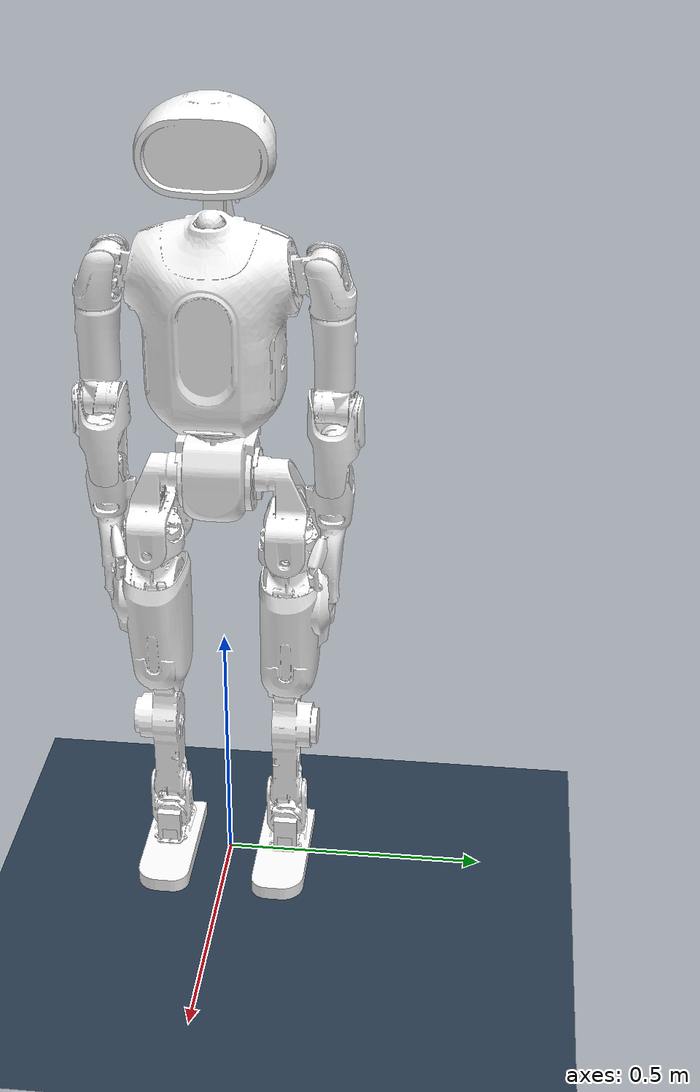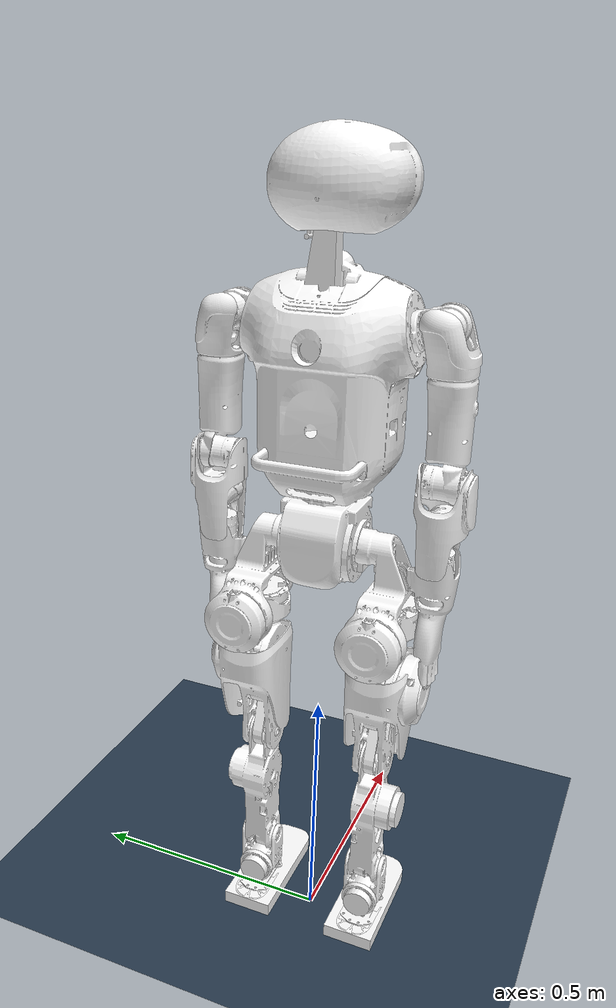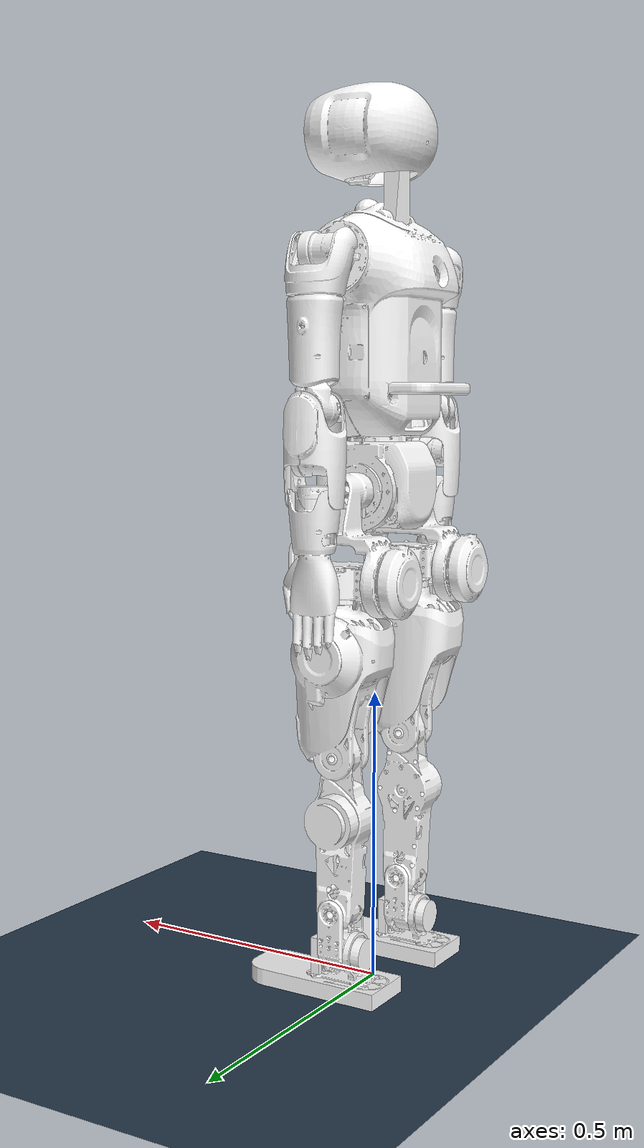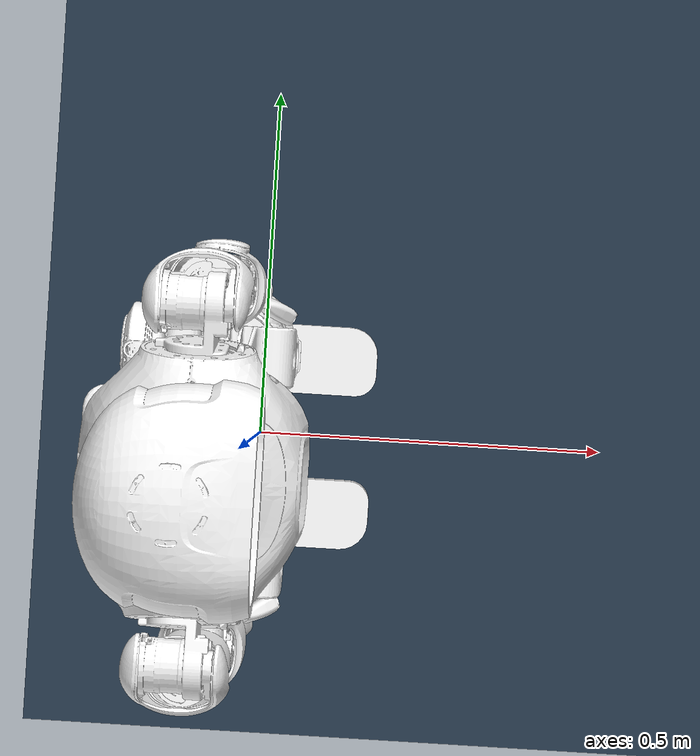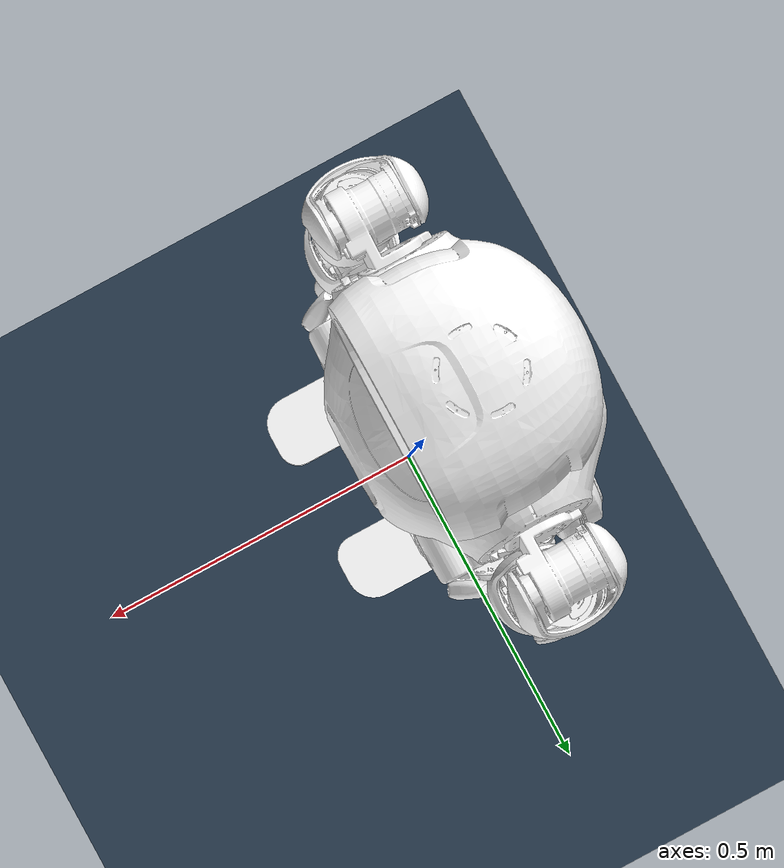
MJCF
<mujoco model="orca">
  <compiler angle="radian" meshdir="meshes/" eulerseq="zyx" discardvisual="false"/>
  <option timestep="0.001"  tolerance="1e-10" solver="Newton" jacobian="dense" cone="pyramidal" gravity="0 0 -9.81">  <!--integrator="RK4"  iteration="50"-->
        <flag contact="enable" energy="enable"/>
  </option>
    <size njmax="500" nconmax="1000" />
    <visual>
        <quality shadowsize='4096'/>
        <map znear='0.05'/>
    </visual>
    <default>
        <joint limited='true'/>
        <motor ctrllimited='true'/>
        <geom  condim='4' contype="1" conaffinity="15" solref='0.001 2' friction='1.0 0.2 0.2'/>
        <equality solref='0.001 2'/>
        <default class='visualgeom'>
            <geom material='visualgeom' condim='1' contype='0' conaffinity='0'/>
        </default>
        <default class='visualgeom2'>
            <geom material='visualgeom2' condim='1' contype='0' conaffinity='0'/>
        </default>
        <default class='obstacle'>
            <geom material='obstacle' condim='3' contype='1' conaffinity='15'/>
        </default>
    </default>
    <asset>
        <texture type="skybox" builtin="gradient" rgb1="0.3 0.5 0.7" rgb2="0 0 0" width="512" height="512"/>
        <texture name="texplane" type="2d" builtin="checker" rgb1=".2 .3 .4" rgb2=".1 0.15 0.2"
            width="512" height="512" mark="cross" markrgb=".8 .8 .8"/>
        <texture name="texplane2" type="2d" builtin="checker" rgb1="1 0.3137 0.1843" rgb2="0.0 0.30196 0.38039"
            width="512" height="512" mark="cross" markrgb=".8 .8 .8"/>

        <material name="matplane" reflectance="0." texture="texplane" texrepeat="1 1" texuniform="true"/>
        <material name="matplane2" reflectance="0.1" texture="texplane2" texrepeat="1 1" texuniform="true"/>

        <material name='obstacle'  rgba='0.9 0.6 0.2 1'/>
        <material name='visualgeom'  rgba='0.5 0.9 0.2 1'/>
        <material name='visualgeom2'  rgba='0.5 0.9 0.2 1'/>

        <mesh name="base_link" file="base_link.STL" />
        <mesh name="waist_yaw_link1" file="waist_yaw_link1.STL" />
        <mesh name="larm_link1" file="larm_link1.STL" />
        <mesh name="larm_link2" file="larm_link2.STL" />
        <mesh name="larm_link3" file="larm_link3.STL" />
        <mesh name="larm_link4" file="larm_link4.STL" />
        <mesh name="larm_link5" file="larm_link5.STL" />
        <mesh name="larm_link6" file="larm_link6.STL" />
        <mesh name="rarm_link1" file="rarm_link1.STL" />
        <mesh name="rarm_link2" file="rarm_link2.STL" />
        <mesh name="rarm_link3" file="rarm_link3.STL" />
        <mesh name="rarm_link4" file="rarm_link4.STL" />
        <mesh name="rarm_link5" file="rarm_link5.STL" />
        <mesh name="rarm_link6" file="rarm_link6.STL" />
        <mesh name="head_link1" file="head_link1.STL" />
        <mesh name="head_link2" file="head_link2.STL" />
        <mesh name="head_link3" file="head_link3.STL" />
        <mesh name="lleg_link1" file="lleg_link1.STL" />
        <mesh name="lleg_link2" file="lleg_link2.STL" />
        <mesh name="lleg_link3" file="lleg_link3.STL" />
        <mesh name="lleg_link4" file="lleg_link4.STL" />
        <mesh name="lleg_link5" file="lleg_link5.STL" />
        <mesh name="lleg_link6" file="lleg_link6.STL" />
        <mesh name="lleg_link6_cls" file="lleg_link6_cls.STL" />
        <mesh name="rleg_link1" file="rleg_link1.STL" />
        <mesh name="rleg_link2" file="rleg_link2.STL" />
        <mesh name="rleg_link3" file="rleg_link3.STL" />
        <mesh name="rleg_link4" file="rleg_link4.STL" />
        <mesh name="rleg_link5" file="rleg_link5.STL" />
        <mesh name="rleg_link6" file="rleg_link6.STL" />
        <mesh name="rleg_link6_cls" file="rleg_link6_cls.STL" />

    </asset>
    <worldbody>
        <light directional="true" diffuse=".4 .4 .4" specular="0.1 0.1 0.1" pos="0 0 5.0" dir="0 0 -1" castshadow="false"/>
        <light directional="true" diffuse=".6 .6 .6" specular="0.2 0.2 0.2" pos="0 0 4" dir="0 0 -1"/>
        <geom name="ground" type="plane" size="0 0 1" pos="0.001 0 0" quat="1 0 0 0" material="matplane" condim="1" conaffinity='15'/>
    <body name="base_link" pos="0.0 0.0 0.85">
      <joint type='slide' axis='1 0 0' limited='false' />
      <joint type='slide' axis='0 1 0' limited='false' />
      <joint type='slide' axis='0 0 1' limited="false" />
      <joint type='ball' limited='false' />
      <site name='imu' size='0.01' pos='0.0 0 0.0'/>

        <geom type="mesh" contype="0" conaffinity="0" group="1" rgba="1 1 1 1" mesh="base_link" />
        <geom size="0.05 0.05 0.05" type="box" rgba="1 1 1 1" />
        <body name="waist_yaw_link1" pos="0 0 0.078" quat="0.5 -0.5 -0.5 0.5">
            <inertial pos="-2.46e-05 -0.195013 0.000228684" quat="0.502097 0.498176 -0.497806 0.501904" mass="11.0332" diaginertia="0.179393 0.155358 0.0654156" />
            <joint name="waist_yaw_joint" pos="0 0 0" axis="0 -1 0" limited="true" range="-1.571 1.571" damping="0.2" />
            <geom type="mesh" contype="0" conaffinity="0" group="1" rgba="1 1 1 1" mesh="waist_yaw_link1" />
            <body name="larm_link1" pos="0.134953 -0.295908 0" quat="0.454519 0.541675 0.454519 -0.541675">
                <inertial pos="0.000439855 0.0358502 7.91e-06" quat="0.519328 0.479105 -0.519788 0.480185" mass="0.576081" diaginertia="0.00059525 0.000527291 0.000441012" />
                <joint name="larm_joint1" pos="0 0 0" axis="0 1 0" limited="true" range="-2.88 2.88" damping="0.2" />
                <geom type="mesh" contype="0" conaffinity="0" group="1" rgba="1 1 1 1" mesh="larm_link1" />
                <body name="larm_link2" pos="-0.0015 0.0499987 0" quat="0.454519 -0.541675 -0.541675 -0.454519">
                    <inertial pos="-0.0256333 0.000250778 0.0157168" quat="0.546056 0.647986 -0.337561 0.409864" mass="0.235909" diaginertia="0.000523812 0.000383492 0.000280485" />
                    <joint name="larm_joint2" pos="0 0 0" axis="0 1 0" limited="true" range="-0.17 2.62" damping="0.2" />
                    <geom type="mesh" contype="0" conaffinity="0" group="1" rgba="1 1 1 1" mesh="larm_link2" />
                    <body name="larm_link3" pos="-0.0645 0 0.0200014" quat="0.707107 0 0 0.707107">
                        <inertial pos="0.000500131 0.0897007 0.00308625" quat="0.67552 0.737342 0.000778581 -0.000328019" mass="1.08737" diaginertia="0.00248891 0.00232032 0.000710521" />
                        <joint name="larm_joint3" pos="0 0 0" axis="0 1 0" limited="true" range="-2.79 2.79" damping="0.2" />
                        <geom type="mesh" contype="0" conaffinity="0" group="1" rgba="1 1 1 1" mesh="larm_link3" />
                        <body name="larm_link4" pos="0 0.1835 0" quat="0.707107 0.707107 0 0">
                            <inertial pos="0.00191171 0.0101619 -0.056078" quat="0.944356 -0.152014 0.023265 0.29076" mass="0.63159" diaginertia="0.00143401 0.00142131 0.000920924" />
                            <joint name="larm_joint4" pos="0 0 0" axis="0 1 0" limited="true" range="-1.57 1.57" damping="0.2" />
                            <geom type="mesh" contype="0" conaffinity="0" group="1" rgba="1 1 1 1" mesh="larm_link4" />
                            <body name="larm_link5" pos="0 0 -0.075" quat="0.5 -0.5 -0.5 -0.5">
                                <inertial pos="-0.0731591 0.00618732 3.44e-06" quat="-0.109346 0.691581 0.147622 0.698547" mass="0.451979" diaginertia="0.000579673 0.000574394 0.000224843" />
                                <joint name="larm_joint5" pos="0 0 0" axis="0 1 0" limited="true" range="-0.35 1.57" damping="0.2" />
                                <geom type="mesh" contype="0" conaffinity="0" group="1" rgba="1 1 1 1" mesh="larm_link5" />
                                <body name="larm_link6" pos="-0.105 0 0" quat="0.5 0.5 -0.5 0.5">
                                    <inertial pos="0.000892339 0.105968 3.11e-05" quat="0.707253 0.70692 0.00503905 0.00567331" mass="0.830189" diaginertia="0.0023087 0.00201411 0.000612016" />
                                    <joint name="larm_joint6" pos="0 0 0" axis="0 1 0" limited="true" range="-2.79 2.79" damping="0.2" />
                                    <geom type="mesh" contype="0" conaffinity="0" group="1" rgba="1 1 1 1" mesh="larm_link6" />
                                </body>
                            </body>
                        </body>
                    </body>
                </body>
            </body>
            <body name="rarm_link1" pos="-0.134953 -0.295908 0" quat="0.541675 0.454519 0.541675 -0.454519">
                <inertial pos="0.000439873 -0.0358502 7.93e-06" quat="0.479106 0.519329 -0.480184 0.519787" mass="0.576081" diaginertia="0.000595249 0.000527291 0.000441012" />
                <joint name="rarm_joint1" pos="0 0 0" axis="0 1 0" limited="true" range="-2.88 2.88" damping="0.2" />
                <geom type="mesh" contype="0" conaffinity="0" group="1" rgba="1 1 1 1" mesh="rarm_link1" />
                <body name="rarm_link2" pos="-0.0015 -0.0499987 0" quat="0.541675 -0.454519 -0.454519 -0.541675">
                    <inertial pos="-0.0256309 0.000253501 -0.015721" quat="0.337573 0.409864 -0.546117 0.64793" mass="0.235939" diaginertia="0.000523817 0.000383486 0.000280446" />
                    <joint name="rarm_joint2" pos="0 0 0" axis="0 -1 0" limited="true" range="-0.17 2.62" damping="0.2" />
                    <geom type="mesh" contype="0" conaffinity="0" group="1" rgba="1 1 1 1" mesh="rarm_link2" />
                    <body name="rarm_link3" pos="-0.0645 0 -0.0200014" quat="0.707107 0 0 0.707107">
                        <inertial pos="0.000500342 0.0897013 -0.00308666" quat="0.737338 0.675524 -0.000289164 0.000745159" mass="1.08737" diaginertia="0.00248889 0.00232032 0.000710539" />
                        <joint name="rarm_joint3" pos="0 0 0" axis="0 1 0" limited="true" range="-2.79 2.79" damping="0.2" />
                        <geom type="mesh" contype="0" conaffinity="0" group="1" rgba="1 1 1 1" mesh="rarm_link3" />
                        <body name="rarm_link4" pos="0 0.1835 0" quat="0.707107 0.707107 0 0">
                            <inertial pos="0.00190835 -0.0101584 -0.0560802" quat="0.944512 0.152026 0.023182 -0.290255" mass="0.63162" diaginertia="0.00143403 0.00142132 0.000920982" />
                            <joint name="rarm_joint4" pos="0 0 0" axis="0 1 0" limited="true" range="-1.57 1.57" damping="0.2" />
                            <geom type="mesh" contype="0" conaffinity="0" group="1" rgba="1 1 1 1" mesh="rarm_link4" />
                            <body name="rarm_link5" pos="0 0 -0.075" quat="0.5 -0.5 -0.5 -0.5">
                                <inertial pos="-0.0731591 0.00618737 -3.6e-06" quat="-0.147696 0.698558 0.109271 0.691565" mass="0.451978" diaginertia="0.000579673 0.000574398 0.00022484" />
                                <joint name="rarm_joint5" pos="0 0 0" axis="0 1 0" limited="true" range="-0.35 1.57" damping="0.2" />
                                <geom type="mesh" contype="0" conaffinity="0" group="1" rgba="1 1 1 1" mesh="rarm_link5" />
                                <body name="rarm_link6" pos="-0.105 0 0" quat="0.5 0.5 -0.5 0.5">
                                    <inertial pos="-0.000892336 0.105968 3.1e-05" quat="0.707253 0.70692 -0.00503907 -0.00567328" mass="0.830188" diaginertia="0.0023087 0.00201411 0.000612016" />
                                    <joint name="rarm_joint6" pos="0 0 0" axis="0 1 0" limited="true" range="-2.79 2.79" damping="0.2" />
                                    <geom type="mesh" contype="0" conaffinity="0" group="1" rgba="1 1 1 1" mesh="rarm_link6" />
                                </body>
                            </body>
                        </body>
                    </body>
                </body>
            </body>
            <body name="head_link1" pos="0 -0.4656 -0.0086" quat="0.499898 -0.5 -0.5 -0.500102">
                <inertial pos="0 0 0" mass="0.000534071" diaginertia="5.34e-09 5.34e-09 5.34e-09" />
                <joint name="head_joint1" pos="0 0 0" axis="1 0 0" limited="true" range="-0.349 0.349" damping="0.2" />
                <geom type="mesh" contype="0" conaffinity="0" group="1" rgba="1 1 1 1" mesh="head_link1" />
                <body name="head_link2" pos="0 0 0" quat="0.707107 6.81134e-05 -0.707107 7.25149e-11">
                    <inertial pos="0 0 0" mass="0.000534071" diaginertia="5.34e-09 5.34e-09 5.34e-09" />
                    <joint name="head_joint2" pos="0 0 0" axis="0 1 0" limited="true" range="-0.349 0.349" damping="0.2" />
                    <geom type="mesh" contype="0" conaffinity="0" group="1" rgba="1 1 1 1" mesh="head_link2" />
                    <body name="head_link3" pos="0 0 0" quat="-0.000144019 0.707107 0.000144019 0.707107">
                        <inertial pos="-0.000672526 -8.45e-05 0.0452592" quat="0.528315 0.528245 -0.469943 0.470099" mass="0.960824" diaginertia="0.00480572 0.00459539 0.00222606" />
                        <joint name="head_joint3" pos="0 0 0" axis="0 0 1" limited="true" range="-0.523 0.349" damping="0.2" />
                        <geom type="mesh" contype="0" conaffinity="0" group="1" rgba="1 1 1 1" mesh="head_link3" />
                    </body>
                </body>
            </body>
        </body>
        <body name="lleg_link1" pos="0 0.125 0">
            <inertial pos="-0.0414232 -0.00514312 -0.0912264" quat="0.580053 0.343687 0.211571 0.70757" mass="1.86152" diaginertia="0.0136536 0.011891 0.0043835" />
            <joint name="lleg_joint1" pos="0 0 0" axis="0 -1 0" limited="true" range="-1.22 1.92" damping="0.2" />
            <geom type="mesh" contype="0" conaffinity="0" group="1" rgba="1 1 1 1" mesh="lleg_link1" />
            <body name="lleg_link2" pos="0 0 -0.1415" quat="0.5 -0.5 -0.5 -0.5">
                <inertial pos="-0.00695412 -0.00602969 5.86e-06" quat="0.698555 0.715384 0.0120792 0.0100686" mass="1.30043" diaginertia="0.00295589 0.00228715 0.00165543" />
                <joint name="lleg_joint2" pos="0 0 0" axis="0 -1 0" limited="true" range="-1.57 0.26" damping="0.2" />
                <geom type="mesh" contype="0" conaffinity="0" group="1" rgba="1 1 1 1" mesh="lleg_link2" />
                <body name="lleg_link3" pos="-0.0275 0 0" quat="0.707107 0 0 0.707107">
                    <inertial pos="-0.00319346 0.118677 0.0116288" quat="0.608127 0.462735 -0.465437 0.446571" mass="3.18617" diaginertia="0.0187932 0.0182038 0.00732765" />
                    <joint name="lleg_joint3" pos="0 0 0" axis="0 1 0" limited="true" range="-2.6 0.44" damping="0.2" />
                    <geom type="mesh" contype="0" conaffinity="0" group="1" rgba="1 1 1 1" mesh="lleg_link3" />
                    <body name="lleg_link4" pos="0 0.267722 0" quat="0.707107 0.707107 0 0">
                        <inertial pos="-0.00152225 0.00361294 -0.13256" quat="0.986147 -0.0427608 0.0064375 0.160136" mass="1.83999" diaginertia="0.0108949 0.0107882 0.001806" />
                        <joint name="lleg_joint4" pos="0 0 0" axis="0 -1 0" limited="true" range="-2.093 0.614" damping="0.2" />
                        <geom type="mesh" contype="0" conaffinity="0" group="1" rgba="1 1 1 1" mesh="lleg_link4" />
                        <body name="lleg_link5" pos="0 -0.009 -0.262">
                            <inertial pos="-0.0116562 -6.36325e-09 -0.063978" quat="0.983649 -3.53338e-06 0.180095 -1.18714e-05" mass="0.815249" diaginertia="0.000848191 0.000796114 0.00064715" />
                            <joint name="lleg_joint5" pos="0 0 0" axis="0 -1 0" limited="true" range="-1.57 1.57" damping="0.2" />
                            <geom type="mesh" contype="0" conaffinity="0" group="1" rgba="1 1 1 1" mesh="lleg_link5" />
                            <body name="lleg_link6" pos="0.0105 0 -0.071">
                                <inertial pos="0.0329783 -0.00171847 -0.0558702" quat="0.0125451 0.720137 -0.0177997 0.69349" mass="0.434268" diaginertia="0.00213972 0.00201847 0.000329009" />
                                <joint name="lleg_joint6" pos="0 0 0" axis="1 0 0" limited="true" range="-0.61 0.61" damping="0.2" />
                                <geom type="mesh" contype="0" conaffinity="0" group="1" rgba="1 1 1 1" mesh="lleg_link6" />
                                <geom quat="0.500398 0.5 0.499602 0.5" type="mesh" rgba="1 1 1 1" mesh="lleg_link6_cls" />
                            </body>
                        </body>
                    </body>
                </body>
            </body>
        </body>
        <body name="rleg_link1" pos="0 -0.125 0">
            <inertial pos="-0.041423 0.0051432 -0.091227" quat="0.70756 0.211578 0.343682 0.580066" mass="1.8615" diaginertia="0.0136539 0.0118911 0.00438351" />
            <joint name="rleg_joint1" pos="0 0 0" axis="0 -1 0" limited="true" range="-1.22 1.92" damping="0.2" />
            <geom type="mesh" contype="0" conaffinity="0" group="1" rgba="1 1 1 1" mesh="rleg_link1" />
            <body name="rleg_link2" pos="0 0 -0.1415" quat="0.5 -0.5 -0.5 -0.5">
                <inertial pos="0.006046 0.0038573 -5.86e-06" quat="0.715382 0.698556 0.0100628 0.0120839" mass="1.3004" diaginertia="0.00295588 0.00228715 0.00165537" />
                <joint name="rleg_joint2" pos="0 0 0" axis="0 1 0" limited="true" range="-1.57 0.26" damping="0.2" />
                <geom type="mesh" contype="0" conaffinity="0" group="1" rgba="1 1 1 1" mesh="rleg_link2" />
                <body name="rleg_link3" pos="-0.0275 0 0" quat="0.707107 0 0 0.707107">
                    <inertial pos="-0.00319389 0.118678 0.0116297" quat="0.465451 0.446606 -0.608101 0.462722" mass="3.18629" diaginertia="0.0187938 0.0182042 0.00732793" />
                    <joint name="rleg_joint3" pos="0 0 0" axis="0 -1 0" limited="true" range="-2.6 0.44" damping="0.2" />
                    <geom type="mesh" contype="0" conaffinity="0" group="1" rgba="1 1 1 1" mesh="rleg_link3" />
                    <body name="rleg_link4" pos="0 0.267722 0" quat="0.707035 0.707179 0 0">
                        <inertial pos="-0.00152224 -0.00361294 -0.13256" quat="0.986147 0.0427608 0.00643745 -0.160137" mass="1.83999" diaginertia="0.0108949 0.0107882 0.001806" />
                        <joint name="rleg_joint4" pos="0 0 0" axis="0 -1 0" limited="true" range="-2.093 0.614" damping="0.2" />
                        <geom type="mesh" contype="0" conaffinity="0" group="1" rgba="1 1 1 1" mesh="rleg_link4" />
                        <body name="rleg_link5" pos="0 0.009 -0.262">
                            <inertial pos="-0.011656 -6.3716e-09 -0.063978" quat="0.983648 -3.53257e-06 0.180101 -1.18726e-05" mass="0.81525" diaginertia="0.000848187 0.00079611 0.000647153" />
                            <joint name="rleg_joint5" pos="0 0 0" axis="0 -1 0" limited="true" range="-1.57 1.57" damping="0.2" />
                            <geom type="mesh" contype="0" conaffinity="0" group="1" rgba="1 1 1 1" mesh="rleg_link5" />
                            <body name="rleg_link6" pos="0.0105 0 -0.071">
                                <inertial pos="0.0329973 0.0017198 -0.0558711" quat="-0.0125978 0.720138 0.0177746 0.693489" mass="0.43429" diaginertia="0.00214024 0.00201895 0.000329065" />
                                <joint name="rleg_joint6" pos="0 0 0" axis="1 0 0" limited="true" range="-0.61 0.61" damping="0.2" />
                                <geom type="mesh" contype="0" conaffinity="0" group="1" rgba="1 1 1 1" mesh="rleg_link6" />
                                <geom quat="0.500398 0.5 0.499602 0.5" type="mesh" rgba="1 1 1 1" mesh="rleg_link6_cls" />
                            </body>
                        </body>
                    </body>
                </body>
            </body>
        </body>
                </body>
    </worldbody>

  <actuator>

      <motor name="lleg_joint1"    joint="lleg_joint1" gear="1" ctrllimited="true" ctrlrange="-150 150"/>
      <motor name="lleg_joint2"     joint="lleg_joint2" gear="1" ctrllimited="true" ctrlrange="-90 90"/>
      <motor name="lleg_joint3"      joint="lleg_joint3" gear="1" ctrllimited="true" ctrlrange="-90 90"/>
      <motor name="lleg_joint4"   joint="lleg_joint4" gear="1" ctrllimited="true" ctrlrange="-150 150"/>
      <motor name="lleg_joint5"  joint="lleg_joint5" gear="1" ctrllimited="true" ctrlrange="-60 60"/>
      <motor name="lleg_joint6"   joint="lleg_joint6" gear="1" ctrllimited="true" ctrlrange="-36 36"/>

      <motor name="rleg_joint1"    joint="rleg_joint1" gear="1" ctrllimited="true" ctrlrange="-150 150"/>
      <motor name="rleg_joint2"     joint="rleg_joint2" gear="1" ctrllimited="true" ctrlrange="-90 90"/>
      <motor name="rleg_joint3"      joint="rleg_joint3" gear="1" ctrllimited="true" ctrlrange="-90 90"/>
      <motor name="rleg_joint4"   joint="rleg_joint4" gear="1" ctrllimited="true" ctrlrange="-150 150"/>
      <motor name="rleg_joint5"  joint="rleg_joint5" gear="1" ctrllimited="true" ctrlrange="-60 60"/>
      <motor name="rleg_joint6"   joint="rleg_joint6" gear="1" ctrllimited="true" ctrlrange="-36 36"/>

      <motor name="waist_yaw_joint"  joint="waist_yaw_joint" gear="1" ctrllimited="true" ctrlrange="-36 36"/>
      <motor name="head_joint1"  joint="head_joint1" gear="1" ctrllimited="true" ctrlrange="-3 3"/>
      <motor name="head_joint2"  joint="head_joint2" gear="1" ctrllimited="true" ctrlrange="-3 3"/>
      <motor name="head_joint3"  joint="head_joint3" gear="1" ctrllimited="true" ctrlrange="-3 3"/>

      <motor name="larm_joint1"  joint="larm_joint1" gear="1" ctrllimited="true" ctrlrange="-90 90"/>
      <motor name="larm_joint2"  joint="larm_joint2" gear="1" ctrllimited="true" ctrlrange="-36 36"/>
      <motor name="larm_joint3"  joint="larm_joint3" gear="1" ctrllimited="true" ctrlrange="-36 36"/>
      <motor name="larm_joint4"  joint="larm_joint4" gear="1" ctrllimited="true" ctrlrange="-36 36"/>
      <motor name="larm_joint5"  joint="larm_joint5" gear="1" ctrllimited="true" ctrlrange="-36 36"/>
      <motor name="larm_joint6"  joint="larm_joint6" gear="1" ctrllimited="true" ctrlrange="-36 36"/>

      <motor name="rarm_joint1"  joint="rarm_joint1" gear="1" ctrllimited="true" ctrlrange="-90 90"/>
      <motor name="rarm_joint2"  joint="rarm_joint2" gear="1" ctrllimited="true" ctrlrange="-36 36"/>
      <motor name="rarm_joint3"  joint="rarm_joint3" gear="1" ctrllimited="true" ctrlrange="-36 36"/>
      <motor name="rarm_joint4"  joint="rarm_joint4" gear="1" ctrllimited="true" ctrlrange="-36 36"/>
      <motor name="rarm_joint5"  joint="rarm_joint5" gear="1" ctrllimited="true" ctrlrange="-36 36"/>
      <motor name="rarm_joint6"  joint="rarm_joint6" gear="1" ctrllimited="true" ctrlrange="-36 36"/>

  </actuator>
  <sensor>
        <framequat     name='orientation' objtype='site' objname='imu'/>
        <framepos     name='position' objtype='site' objname='imu'/>
        <gyro          name='angular-velocity'    site='imu' cutoff='34.9'/>
        <velocimeter   name='linear-velocity'     site='imu' cutoff='30'/>
        <accelerometer name='linear-acceleration' site='imu' cutoff='157'/>
        <magnetometer  name='magnetometer'        site='imu'/>

  </sensor>

</mujoco>
